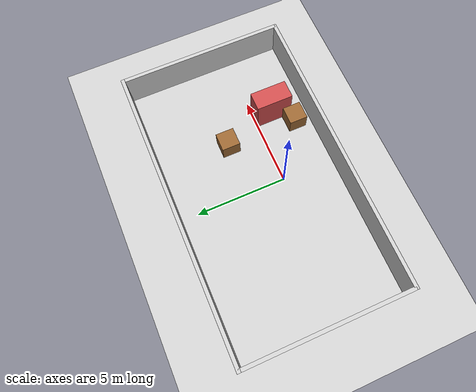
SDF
<?xml version="1.0" ?>
<sdf version="1.6">
  <world name="warehouse">
    <physics name="1ms" type="ignored">
      <max_step_size>0.001</max_step_size>
      <real_time_factor>1.0</real_time_factor>
    </physics>

    <plugin
      filename="gz-sim-physics-system"
      name="gz::sim::systems::Physics">
    </plugin>
    <plugin
      filename="gz-sim-scene-broadcaster-system"
      name="gz::sim::systems::SceneBroadcaster">
    </plugin>
    <plugin
      filename="gz-sim-user-commands-system"
      name="gz::sim::systems::UserCommands">
    </plugin>
    <plugin
      filename="gz-sim-sensors-system"
      name="gz::sim::systems::Sensors">
      <render_engine>ogre2</render_engine>
    </plugin>
    <plugin
      filename="gz-sim-imu-system"
      name="gz::sim::systems::Imu">
    </plugin>

    <light type="directional" name="sun">
      <cast_shadows>true</cast_shadows>
      <pose>0 0 10 0 0 0</pose>
      <diffuse>0.8 0.8 0.8 1</diffuse>
      <specular>0.2 0.2 0.2 1</specular>
      <attenuation>
        <range>1000</range>
        <constant>0.9</constant>
        <linear>0.01</linear>
        <quadratic>0.001</quadratic>
      </attenuation>
      <direction>-0.5 0.1 -0.9</direction>
    </light>

    <model name="ground_plane">
      <static>true</static>
      <link name="link">
        <collision name="collision">
          <geometry>
            <plane>
              <normal>0 0 1</normal>
              <size>100 100</size>
            </plane>
          </geometry>
        </collision>
        <visual name="visual">
          <geometry>
            <plane>
              <normal>0 0 1</normal>
              <size>100 100</size>
            </plane>
          </geometry>
          <material>
            <ambient>0.8 0.8 0.8 1</ambient>
            <diffuse>0.8 0.8 0.8 1</diffuse>
          </material>
        </visual>
      </link>
    </model>

    <!-- Warehouse Box 1 -->
    <model name="box1">
      <pose>3 2 0.5 0 0 0</pose>
      <static>true</static>
      <link name="link">
        <collision name="collision">
          <geometry>
            <box><size>1 1 1</size></box>
          </geometry>
        </collision>
        <visual name="visual">
          <geometry>
            <box><size>1 1 1</size></box>
          </geometry>
          <material>
            <ambient>0.6 0.4 0.2 1</ambient>
            <diffuse>0.6 0.4 0.2 1</diffuse>
          </material>
        </visual>
      </link>
    </model>

    <!-- Warehouse Box 2 -->
    <model name="box2">
      <pose>3 -2 0.5 0 0 0</pose>
      <static>true</static>
      <link name="link">
        <collision name="collision">
          <geometry>
            <box><size>1 1 1</size></box>
          </geometry>
        </collision>
        <visual name="visual">
          <geometry>
            <box><size>1 1 1</size></box>
          </geometry>
          <material>
            <ambient>0.6 0.4 0.2 1</ambient>
            <diffuse>0.6 0.4 0.2 1</diffuse>
          </material>
        </visual>
      </link>
    </model>

    <!-- AprilTag Marker -->
    <model name="apriltag36_11_00000">
      <pose>4 0 0.5 0 1.57 0</pose>
      <static>true</static>
      <link name="link">
        <visual name="visual">
          <geometry>
            <box><size>0.2 0.2 0.01</size></box>
          </geometry>
          <material>
            <ambient>1 1 1 1</ambient>
            <diffuse>1 1 1 1</diffuse>
          </material>
        </visual>
      </link>
    </model>

    <!-- Walls -->
    <model name="wall_north">
      <pose>0 6 1 0 0 0</pose>
      <static>true</static>
      <link name="link">
        <collision name="collision">
          <geometry><box><size>16.2 0.2 2</size></box></geometry>
        </collision>
        <visual name="visual">
          <geometry><box><size>16.2 0.2 2</size></box></geometry>
          <material><ambient>0.8 0.8 0.8 1</ambient></material>
        </visual>
      </link>
    </model>

    <model name="wall_south">
      <pose>0 -3 1 0 0 0</pose>
      <static>true</static>
      <link name="link">
        <collision name="collision">
          <geometry><box><size>16.2 0.2 2</size></box></geometry>
        </collision>
        <visual name="visual">
          <geometry><box><size>16.2 0.2 2</size></box></geometry>
          <material><ambient>0.8 0.8 0.8 1</ambient></material>
        </visual>
      </link>
    </model>

    <model name="wall_east">
      <pose>8 1.5 1 0 0 0</pose>
      <static>true</static>
      <link name="link">
        <collision name="collision">
          <geometry><box><size>0.2 9 2</size></box></geometry>
        </collision>
        <visual name="visual">
          <geometry><box><size>0.2 9 2</size></box></geometry>
          <material><ambient>0.8 0.8 0.8 1</ambient></material>
        </visual>
      </link>
    </model>

    <model name="wall_west">
      <pose>-8 1.5 1 0 0 0</pose>
      <static>true</static>
      <link name="link">
        <collision name="collision">
          <geometry><box><size>0.2 9 2</size></box></geometry>
        </collision>
        <visual name="visual">
          <geometry><box><size>0.2 9 2</size></box></geometry>
          <material><ambient>0.8 0.8 0.8 1</ambient></material>
        </visual>
      </link>
    </model>

    <!-- Asymmetric pillar -->
    <model name="pillar_asymmetric">
      <pose>4 -1 1 0 0 0</pose>
      <static>true</static>
      <link name="link">
        <collision name="collision">
          <geometry><box><size>1 2 2</size></box></geometry>
        </collision>
        <visual name="visual">
          <geometry><box><size>1 2 2</size></box></geometry>
          <material><ambient>0.8 0.3 0.3 1</ambient></material>
        </visual>
      </link>
    </model>

  </world>
</sdf>
